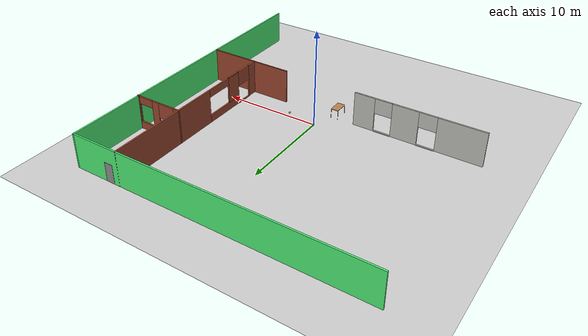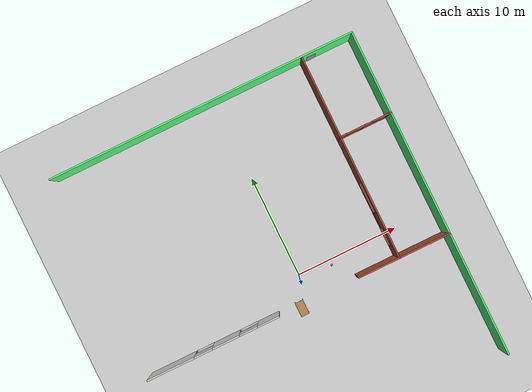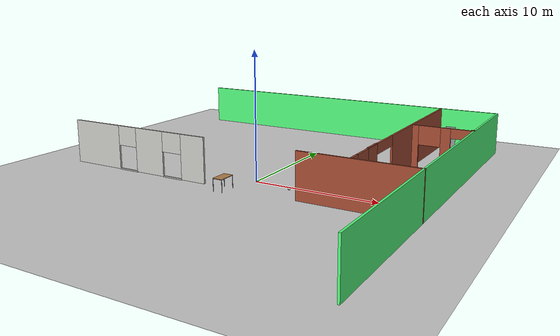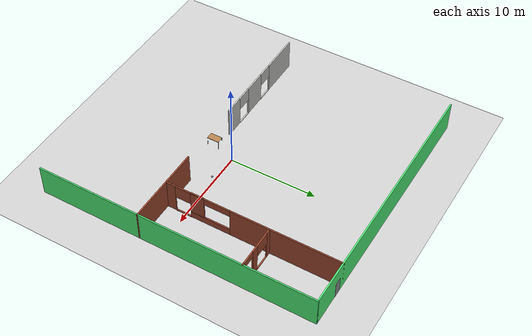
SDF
<sdf version="1.6">
 <world name="default">
  <model name="ground_plane">
   <static>1</static>
   <link name="link">
    <collision name="collision">
     <geometry><plane><normal>0 0 1</normal><size>100 100</size></plane></geometry>
     <surface><friction><ode><mu>100</mu><mu2>50</mu2></ode></friction></surface>
    </collision>
    <visual name="visual">
     <cast_shadows>0</cast_shadows>
     <geometry><plane><normal>0 0 1</normal><size>100 100</size></plane></geometry>
     <material>
      <script><uri>file://media/materials/scripts/gazebo.material</uri><name>Gazebo/Grey</name></script>
     </material>
    </visual>
   </link>
  </model>
  <model name="table_3_clone_clone_clone_0">
   <static>0</static>
   <link name="link">
    <collision name="surface">
     <pose>0 0 1 0 -0 0</pose>
     <geometry><box><size>1.5 0.8 0.03</size></box></geometry>
     <surface><friction><ode><mu>0.6</mu><mu2>0.6</mu2></ode></friction></surface>
    </collision>
    <visual name="visual1">
     <pose>0 0 1 0 -0 0</pose>
     <geometry><box><size>1.4 0.8 0.04</size></box></geometry>
     <material>
      <script><uri>file://media/materials/scripts/gazebo.material</uri><name>Gazebo/Wood</name></script>
     </material>
    </visual>
    <collision name="front_left_leg">
     <pose>0.68 0.38 0.5 0 -0 0</pose>
     <geometry><cylinder><radius>0.02</radius><length>1</length></cylinder></geometry>
    </collision>
    <visual name="front_left_leg">
     <pose>0.68 0.38 0.5 0 -0 0</pose>
     <geometry><cylinder><radius>0.02</radius><length>1</length></cylinder></geometry>
     <material>
      <script><uri>file://media/materials/scripts/gazebo.material</uri><name>Gazebo/Grey</name></script>
     </material>
    </visual>
    <collision name="front_right_leg">
     <pose>0.68 -0.38 0.5 0 -0 0</pose>
     <geometry><cylinder><radius>0.02</radius><length>1</length></cylinder></geometry>
    </collision>
    <visual name="front_right_leg">
     <pose>0.68 -0.38 0.5 0 -0 0</pose>
     <geometry><cylinder><radius>0.02</radius><length>1</length></cylinder></geometry>
     <material>
      <script><uri>file://media/materials/scripts/gazebo.material</uri><name>Gazebo/Grey</name></script>
     </material>
    </visual>
    <collision name="back_right_leg">
     <pose>-0.68 -0.38 0.5 0 -0 0</pose>
     <geometry><cylinder><radius>0.02</radius><length>1</length></cylinder></geometry>
    </collision>
    <visual name="back_right_leg">
     <pose>-0.68 -0.38 0.5 0 -0 0</pose>
     <geometry><cylinder><radius>0.02</radius><length>1</length></cylinder></geometry>
     <material>
      <script><uri>file://media/materials/scripts/gazebo.material</uri><name>Gazebo/Grey</name></script>
     </material>
    </visual>
    <collision name="back_left_leg">
     <pose>-0.68 0.38 0.5 0 -0 0</pose>
     <geometry><cylinder><radius>0.02</radius><length>1</length></cylinder></geometry>
    </collision>
    <visual name="back_left_leg">
     <pose>-0.68 0.38 0.5 0 -0 0</pose>
     <geometry><cylinder><radius>0.02</radius><length>1</length></cylinder></geometry>
     <material>
      <script><uri>file://media/materials/scripts/gazebo.material</uri><name>Gazebo/Grey</name></script>
     </material>
    </visual>
    <inertial>
     <inertia><ixx>1</ixx><ixy>0</ixy><ixz>0</ixz><iyy>1</iyy><iyz>0</iyz><izz>1</izz></inertia>
     <mass>1</mass>
    </inertial>
   </link>
   <pose>-1.06808 -2.82716 -0 0 -0 1.57001</pose>
  </model>
  <model name="my_ball">
   <link name="link_0">
    <inertial>
     <mass>1</mass>
     <inertia><ixx>0.1</ixx><ixy>0</ixy><ixz>0</ixz><iyy>0.1</iyy><iyz>0</iyz><izz>0.1</izz></inertia>
    </inertial>
    <visual name="visual">
     <geometry><sphere><radius>0.1</radius></sphere></geometry>
     <material>
      <lighting>1</lighting>
      <script><uri>file://media/materials/scripts/gazebo.material</uri><name>Gazebo/Grey</name></script>
      <ambient>1 1 1 1</ambient>
      <diffuse>1 1 1 1</diffuse>
      <specular>1 1 1 1</specular>
      <emissive>1 1 1 1</emissive>
      <shader type="vertex"><normal_map>__default__</normal_map></shader>
     </material>
    </visual>
    <collision name="collision">
     <geometry><sphere><radius>0.1</radius></sphere></geometry>
     <surface>
      <friction>
       <ode><mu>1</mu><mu2>1</mu2><fdir1>0 0 0</fdir1><slip1>0</slip1><slip2>0</slip2></ode>
       <torsional>
        <coefficient>1</coefficient>
        <patch_radius>0</patch_radius>
        <surface_radius>0</surface_radius>
        <use_patch_radius>1</use_patch_radius>
        <ode><slip>0</slip></ode>
       </torsional>
      </friction>
      <bounce><restitution_coefficient>0</restitution_coefficient><threshold>1e+06</threshold></bounce>
      <contact>
       <collide_without_contact>0</collide_without_contact>
       <collide_without_contact_bitmask>1</collide_without_contact_bitmask>
       <collide_bitmask>1</collide_bitmask>
       <ode>
        <soft_cfm>0</soft_cfm>
        <soft_erp>0.2</soft_erp>
        <kp>1e+13</kp>
        <kd>1</kd>
        <max_vel>0.01</max_vel>
        <min_depth>0</min_depth>
       </ode>
       <bullet>
        <split_impulse>1</split_impulse>
        <split_impulse_penetration_threshold>-0.01</split_impulse_penetration_threshold>
        <soft_cfm>0</soft_cfm>
        <soft_erp>0.2</soft_erp>
        <kp>1e+13</kp>
        <kd>1</kd>
       </bullet>
      </contact>
     </surface>
    </collision>
   </link>
   <static>0</static>
   <pose>3.17286 -0.504878 0.1 0 -0 0</pose>
  </model>
  <model name="myfloorplan">
   <link name="Door_22">
    <pose>11 16 0 0 -0 0</pose>
    <visual name="Door_22_Visual">
     <pose>0 0 1 0 -0 0</pose>
     <geometry><box><size>0.9 0.17 2</size></box></geometry>
     <material>
      <script><uri>file://media/materials/scripts/gazebo.material</uri><name>Gazebo/Grey</name></script>
     </material>
    </visual>
    <collision name="Door_22_Collision">
     <pose>0 0 1 0 -0 0</pose>
     <geometry><box><size>0.9 0.17 2</size></box></geometry>
     <surface>
      <friction>
       <ode><mu>1</mu><mu2>1</mu2><fdir1>0 0 0</fdir1><slip1>0</slip1><slip2>0</slip2></ode>
       <torsional>
        <coefficient>1</coefficient>
        <patch_radius>0</patch_radius>
        <surface_radius>0</surface_radius>
        <use_patch_radius>1</use_patch_radius>
        <ode><slip>0</slip></ode>
       </torsional>
      </friction>
      <bounce><restitution_coefficient>0</restitution_coefficient><threshold>1e+06</threshold></bounce>
      <contact>
       <collide_without_contact>0</collide_without_contact>
       <collide_without_contact_bitmask>1</collide_without_contact_bitmask>
       <collide_bitmask>1</collide_bitmask>
       <ode>
        <soft_cfm>0</soft_cfm>
        <soft_erp>0.2</soft_erp>
        <kp>1e+13</kp>
        <kd>1</kd>
        <max_vel>0.01</max_vel>
        <min_depth>0</min_depth>
       </ode>
       <bullet>
        <split_impulse>1</split_impulse>
        <split_impulse_penetration_threshold>-0.01</split_impulse_penetration_threshold>
        <soft_cfm>0</soft_cfm>
        <soft_erp>0.2</soft_erp>
        <kp>1e+13</kp>
        <kd>1</kd>
       </bullet>
      </contact>
     </surface>
    </collision>
   </link>
   <link name="Wall_0">
    <pose>0 16 0 0 -0 0</pose>
    <visual name="Wall_0_Visual">
     <pose>0 0 1.8 0 -0 0</pose>
     <geometry><box><size>30.15 0.15 3.6</size></box></geometry>
     <material>
      <script><uri>file://media/materials/scripts/gazebo.material</uri><name>Gazebo/Grey</name></script>
      <ambient>0.333333 1 0.498039 1</ambient>
     </material>
    </visual>
    <collision name="Wall_0_Collision">
     <pose>0 0 1.8 0 -0 0</pose>
     <geometry><box><size>30.15 0.15 3.6</size></box></geometry>
     <surface>
      <friction>
       <ode><mu>1</mu><mu2>1</mu2><fdir1>0 0 0</fdir1><slip1>0</slip1><slip2>0</slip2></ode>
       <torsional>
        <coefficient>1</coefficient>
        <patch_radius>0</patch_radius>
        <surface_radius>0</surface_radius>
        <use_patch_radius>1</use_patch_radius>
        <ode><slip>0</slip></ode>
       </torsional>
      </friction>
      <bounce><restitution_coefficient>0</restitution_coefficient><threshold>1e+06</threshold></bounce>
      <contact>
       <collide_without_contact>0</collide_without_contact>
       <collide_without_contact_bitmask>1</collide_without_contact_bitmask>
       <collide_bitmask>1</collide_bitmask>
       <ode>
        <soft_cfm>0</soft_cfm>
        <soft_erp>0.2</soft_erp>
        <kp>1e+13</kp>
        <kd>1</kd>
        <max_vel>0.01</max_vel>
        <min_depth>0</min_depth>
       </ode>
       <bullet>
        <split_impulse>1</split_impulse>
        <split_impulse_penetration_threshold>-0.01</split_impulse_penetration_threshold>
        <soft_cfm>0</soft_cfm>
        <soft_erp>0.2</soft_erp>
        <kp>1e+13</kp>
        <kd>1</kd>
       </bullet>
      </contact>
     </surface>
    </collision>
   </link>
   <link name="Wall_17">
    <pose>10.5 -4 0 0 -0 0</pose>
    <visual name="Wall_17_Visual">
     <pose>0 0 1.8 0 -0 0</pose>
     <geometry><box><size>9.15 0.15 3.6</size></box></geometry>
     <material>
      <script><uri>file://media/materials/scripts/gazebo.material</uri><name>Gazebo/Bricks</name></script>
      <ambient>0.333333 0.666667 1 1</ambient>
     </material>
    </visual>
    <collision name="Wall_17_Collision">
     <pose>0 0 1.8 0 -0 0</pose>
     <geometry><box><size>9.15 0.15 3.6</size></box></geometry>
     <surface>
      <friction>
       <ode><mu>1</mu><mu2>1</mu2><fdir1>0 0 0</fdir1><slip1>0</slip1><slip2>0</slip2></ode>
       <torsional>
        <coefficient>1</coefficient>
        <patch_radius>0</patch_radius>
        <surface_radius>0</surface_radius>
        <use_patch_radius>1</use_patch_radius>
        <ode><slip>0</slip></ode>
       </torsional>
      </friction>
      <bounce><restitution_coefficient>0</restitution_coefficient><threshold>1e+06</threshold></bounce>
      <contact>
       <collide_without_contact>0</collide_without_contact>
       <collide_without_contact_bitmask>1</collide_without_contact_bitmask>
       <collide_bitmask>1</collide_bitmask>
       <ode>
        <soft_cfm>0</soft_cfm>
        <soft_erp>0.2</soft_erp>
        <kp>1e+13</kp>
        <kd>1</kd>
        <max_vel>0.01</max_vel>
        <min_depth>0</min_depth>
       </ode>
       <bullet>
        <split_impulse>1</split_impulse>
        <split_impulse_penetration_threshold>-0.01</split_impulse_penetration_threshold>
        <soft_cfm>0</soft_cfm>
        <soft_erp>0.2</soft_erp>
        <kp>1e+13</kp>
        <kd>1</kd>
       </bullet>
      </contact>
     </surface>
    </collision>
   </link>
   <link name="Wall_23">
    <pose>10 6 0 0 0 -1.5708</pose>
    <visual name="Wall_23_Visual_0">
     <pose>-3.7875 0 1.8 0 -0 0</pose>
     <geometry><box><size>12.575 0.15 3.6</size></box></geometry>
     <material>
      <script><uri>file://media/materials/scripts/gazebo.material</uri><name>Gazebo/Bricks</name></script>
      <ambient>0.333333 0.666667 1 1</ambient>
     </material>
    </visual>
    <visual name="Wall_23_Visual_1">
     <pose>9.4875 0 1.8 0 -0 0</pose>
     <geometry><box><size>1.175 0.15 3.6</size></box></geometry>
     <material>
      <script><uri>file://media/materials/scripts/gazebo.material</uri><name>Gazebo/Bricks</name></script>
      <ambient>0.333333 0.666667 1 1</ambient>
     </material>
    </visual>
    <visual name="Wall_23_Visual_2">
     <pose>4.8 0 0.4 0 -0 0</pose>
     <geometry><box><size>4.6 0.15 0.8</size></box></geometry>
     <material>
      <script><uri>file://media/materials/scripts/gazebo.material</uri><name>Gazebo/Bricks</name></script>
      <ambient>0.333333 0.666667 1 1</ambient>
     </material>
    </visual>
    <visual name="Wall_23_Visual_3">
     <pose>8 0 0 0 -0 0</pose>
     <geometry><box><size>1.8 0.15 0.1</size></box></geometry>
     <material>
      <script><uri>file://media/materials/scripts/gazebo.material</uri><name>Gazebo/Bricks</name></script>
      <ambient>0.333333 0.666667 1 1</ambient>
     </material>
    </visual>
    <visual name="Wall_23_Visual_4">
     <pose>6.3 0 2.2 0 -0 0</pose>
     <geometry><box><size>1.6 0.15 2.8</size></box></geometry>
     <material>
      <script><uri>file://media/materials/scripts/gazebo.material</uri><name>Gazebo/Bricks</name></script>
      <ambient>0.333333 0.666667 1 1</ambient>
     </material>
    </visual>
    <visual name="Wall_23_Visual_5">
     <pose>8 0 2.8 0 -0 0</pose>
     <geometry><box><size>1.8 0.15 1.6</size></box></geometry>
     <material>
      <script><uri>file://media/materials/scripts/gazebo.material</uri><name>Gazebo/Bricks</name></script>
      <ambient>0.333333 0.666667 1 1</ambient>
     </material>
    </visual>
    <visual name="Wall_23_Visual_6">
     <pose>4 0 3.2 0 -0 0</pose>
     <geometry><box><size>3 0.15 0.8</size></box></geometry>
     <material>
      <script><uri>file://media/materials/scripts/gazebo.material</uri><name>Gazebo/Bricks</name></script>
      <ambient>0.333333 0.666667 1 1</ambient>
     </material>
    </visual>
    <visual name="Wall_23_Visual_7">
     <pose>6.3 0 3.6 0 -0 0</pose>
     <geometry><box><size>1.6 0.15 0.1</size></box></geometry>
     <material>
      <script><uri>file://media/materials/scripts/gazebo.material</uri><name>Gazebo/Bricks</name></script>
      <ambient>0.333333 0.666667 1 1</ambient>
     </material>
    </visual>
    <collision name="Wall_23_Collision_0">
     <pose>-3.7875 0 1.8 0 -0 0</pose>
     <geometry><box><size>12.575 0.15 3.6</size></box></geometry>
     <surface>
      <friction>
       <ode><mu>1</mu><mu2>1</mu2><fdir1>0 0 0</fdir1><slip1>0</slip1><slip2>0</slip2></ode>
       <torsional>
        <coefficient>1</coefficient>
        <patch_radius>0</patch_radius>
        <surface_radius>0</surface_radius>
        <use_patch_radius>1</use_patch_radius>
        <ode><slip>0</slip></ode>
       </torsional>
      </friction>
      <bounce><restitution_coefficient>0</restitution_coefficient><threshold>1e+06</threshold></bounce>
      <contact>
       <collide_without_contact>0</collide_without_contact>
       <collide_without_contact_bitmask>1</collide_without_contact_bitmask>
       <collide_bitmask>1</collide_bitmask>
       <ode>
        <soft_cfm>0</soft_cfm>
        <soft_erp>0.2</soft_erp>
        <kp>1e+13</kp>
        <kd>1</kd>
        <max_vel>0.01</max_vel>
        <min_depth>0</min_depth>
       </ode>
       <bullet>
        <split_impulse>1</split_impulse>
        <split_impulse_penetration_threshold>-0.01</split_impulse_penetration_threshold>
        <soft_cfm>0</soft_cfm>
        <soft_erp>0.2</soft_erp>
        <kp>1e+13</kp>
        <kd>1</kd>
       </bullet>
      </contact>
     </surface>
    </collision>
    <collision name="Wall_23_Collision_1">
     <pose>9.4875 0 1.8 0 -0 0</pose>
     <geometry><box><size>1.175 0.15 3.6</size></box></geometry>
     <surface>
      <friction>
       <ode><mu>1</mu><mu2>1</mu2><fdir1>0 0 0</fdir1><slip1>0</slip1><slip2>0</slip2></ode>
       <torsional>
        <coefficient>1</coefficient>
        <patch_radius>0</patch_radius>
        <surface_radius>0</surface_radius>
        <use_patch_radius>1</use_patch_radius>
        <ode><slip>0</slip></ode>
       </torsional>
      </friction>
      <bounce><restitution_coefficient>0</restitution_coefficient><threshold>1e+06</threshold></bounce>
      <contact>
       <collide_without_contact>0</collide_without_contact>
       <collide_without_contact_bitmask>1</collide_without_contact_bitmask>
       <collide_bitmask>1</collide_bitmask>
       <ode>
        <soft_cfm>0</soft_cfm>
        <soft_erp>0.2</soft_erp>
        <kp>1e+13</kp>
        <kd>1</kd>
        <max_vel>0.01</max_vel>
        <min_depth>0</min_depth>
       </ode>
       <bullet>
        <split_impulse>1</split_impulse>
        <split_impulse_penetration_threshold>-0.01</split_impulse_penetration_threshold>
        <soft_cfm>0</soft_cfm>
        <soft_erp>0.2</soft_erp>
        <kp>1e+13</kp>
        <kd>1</kd>
       </bullet>
      </contact>
     </surface>
    </collision>
    <collision name="Wall_23_Collision_2">
     <pose>4.8 0 0.4 0 -0 0</pose>
     <geometry><box><size>4.6 0.15 0.8</size></box></geometry>
     <surface>
      <friction>
       <ode><mu>1</mu><mu2>1</mu2><fdir1>0 0 0</fdir1><slip1>0</slip1><slip2>0</slip2></ode>
       <torsional>
        <coefficient>1</coefficient>
        <patch_radius>0</patch_radius>
        <surface_radius>0</surface_radius>
        <use_patch_radius>1</use_patch_radius>
        <ode><slip>0</slip></ode>
       </torsional>
      </friction>
      <bounce><restitution_coefficient>0</restitution_coefficient><threshold>1e+06</threshold></bounce>
      <contact>
       <collide_without_contact>0</collide_without_contact>
       <collide_without_contact_bitmask>1</collide_without_contact_bitmask>
       <collide_bitmask>1</collide_bitmask>
       <ode>
        <soft_cfm>0</soft_cfm>
        <soft_erp>0.2</soft_erp>
        <kp>1e+13</kp>
        <kd>1</kd>
        <max_vel>0.01</max_vel>
        <min_depth>0</min_depth>
       </ode>
       <bullet>
        <split_impulse>1</split_impulse>
        <split_impulse_penetration_threshold>-0.01</split_impulse_penetration_threshold>
        <soft_cfm>0</soft_cfm>
        <soft_erp>0.2</soft_erp>
        <kp>1e+13</kp>
        <kd>1</kd>
       </bullet>
      </contact>
     </surface>
    </collision>
    <collision name="Wall_23_Collision_3">
     <pose>8 0 0 0 -0 0</pose>
     <geometry><box><size>1.8 0.15 0.1</size></box></geometry>
     <surface>
      <friction>
       <ode><mu>1</mu><mu2>1</mu2><fdir1>0 0 0</fdir1><slip1>0</slip1><slip2>0</slip2></ode>
       <torsional>
        <coefficient>1</coefficient>
        <patch_radius>0</patch_radius>
        <surface_radius>0</surface_radius>
        <use_patch_radius>1</use_patch_radius>
        <ode><slip>0</slip></ode>
       </torsional>
      </friction>
      <bounce><restitution_coefficient>0</restitution_coefficient><threshold>1e+06</threshold></bounce>
      <contact>
       <collide_without_contact>0</collide_without_contact>
       <collide_without_contact_bitmask>1</collide_without_contact_bitmask>
       <collide_bitmask>1</collide_bitmask>
       <ode>
        <soft_cfm>0</soft_cfm>
        <soft_erp>0.2</soft_erp>
        <kp>1e+13</kp>
        <kd>1</kd>
        <max_vel>0.01</max_vel>
        <min_depth>0</min_depth>
       </ode>
       <bullet>
        <split_impulse>1</split_impulse>
        <split_impulse_penetration_threshold>-0.01</split_impulse_penetration_threshold>
        <soft_cfm>0</soft_cfm>
        <soft_erp>0.2</soft_erp>
        <kp>1e+13</kp>
        <kd>1</kd>
       </bullet>
      </contact>
     </surface>
    </collision>
    <collision name="Wall_23_Collision_4">
     <pose>6.3 0 2.2 0 -0 0</pose>
     <geometry><box><size>1.6 0.15 2.8</size></box></geometry>
     <surface>
      <friction>
       <ode><mu>1</mu><mu2>1</mu2><fdir1>0 0 0</fdir1><slip1>0</slip1><slip2>0</slip2></ode>
       <torsional>
        <coefficient>1</coefficient>
        <patch_radius>0</patch_radius>
        <surface_radius>0</surface_radius>
        <use_patch_radius>1</use_patch_radius>
        <ode><slip>0</slip></ode>
       </torsional>
      </friction>
      <bounce><restitution_coefficient>0</restitution_coefficient><threshold>1e+06</threshold></bounce>
      <contact>
       <collide_without_contact>0</collide_without_contact>
       <collide_without_contact_bitmask>1</collide_without_contact_bitmask>
       <collide_bitmask>1</collide_bitmask>
       <ode>
        <soft_cfm>0</soft_cfm>
        <soft_erp>0.2</soft_erp>
        <kp>1e+13</kp>
        <kd>1</kd>
        <max_vel>0.01</max_vel>
        <min_depth>0</min_depth>
       </ode>
       <bullet>
        <split_impulse>1</split_impulse>
        <split_impulse_penetration_threshold>-0.01</split_impulse_penetration_threshold>
        <soft_cfm>0</soft_cfm>
        <soft_erp>0.2</soft_erp>
        <kp>1e+13</kp>
        <kd>1</kd>
       </bullet>
      </contact>
     </surface>
    </collision>
    <collision name="Wall_23_Collision_5">
     <pose>8 0 2.8 0 -0 0</pose>
     <geometry><box><size>1.8 0.15 1.6</size></box></geometry>
     <surface>
      <friction>
       <ode><mu>1</mu><mu2>1</mu2><fdir1>0 0 0</fdir1><slip1>0</slip1><slip2>0</slip2></ode>
       <torsional>
        <coefficient>1</coefficient>
        <patch_radius>0</patch_radius>
        <surface_radius>0</surface_radius>
        <use_patch_radius>1</use_patch_radius>
        <ode><slip>0</slip></ode>
       </torsional>
      </friction>
      <bounce><restitution_coefficient>0</restitution_coefficient><threshold>1e+06</threshold></bounce>
      <contact>
       <collide_without_contact>0</collide_without_contact>
       <collide_without_contact_bitmask>1</collide_without_contact_bitmask>
       <collide_bitmask>1</collide_bitmask>
       <ode>
        <soft_cfm>0</soft_cfm>
        <soft_erp>0.2</soft_erp>
        <kp>1e+13</kp>
        <kd>1</kd>
        <max_vel>0.01</max_vel>
        <min_depth>0</min_depth>
       </ode>
       <bullet>
        <split_impulse>1</split_impulse>
        <split_impulse_penetration_threshold>-0.01</split_impulse_penetration_threshold>
        <soft_cfm>0</soft_cfm>
        <soft_erp>0.2</soft_erp>
        <kp>1e+13</kp>
        <kd>1</kd>
       </bullet>
      </contact>
     </surface>
    </collision>
    <collision name="Wall_23_Collision_6">
     <pose>4 0 3.2 0 -0 0</pose>
     <geometry><box><size>3 0.15 0.8</size></box></geometry>
     <surface>
      <friction>
       <ode><mu>1</mu><mu2>1</mu2><fdir1>0 0 0</fdir1><slip1>0</slip1><slip2>0</slip2></ode>
       <torsional>
        <coefficient>1</coefficient>
        <patch_radius>0</patch_radius>
        <surface_radius>0</surface_radius>
        <use_patch_radius>1</use_patch_radius>
        <ode><slip>0</slip></ode>
       </torsional>
      </friction>
      <bounce><restitution_coefficient>0</restitution_coefficient><threshold>1e+06</threshold></bounce>
      <contact>
       <collide_without_contact>0</collide_without_contact>
       <collide_without_contact_bitmask>1</collide_without_contact_bitmask>
       <collide_bitmask>1</collide_bitmask>
       <ode>
        <soft_cfm>0</soft_cfm>
        <soft_erp>0.2</soft_erp>
        <kp>1e+13</kp>
        <kd>1</kd>
        <max_vel>0.01</max_vel>
        <min_depth>0</min_depth>
       </ode>
       <bullet>
        <split_impulse>1</split_impulse>
        <split_impulse_penetration_threshold>-0.01</split_impulse_penetration_threshold>
        <soft_cfm>0</soft_cfm>
        <soft_erp>0.2</soft_erp>
        <kp>1e+13</kp>
        <kd>1</kd>
       </bullet>
      </contact>
     </surface>
    </collision>
    <collision name="Wall_23_Collision_7">
     <pose>6.3 0 3.6 0 -0 0</pose>
     <geometry><box><size>1.6 0.15 0.1</size></box></geometry>
     <surface>
      <friction>
       <ode><mu>1</mu><mu2>1</mu2><fdir1>0 0 0</fdir1><slip1>0</slip1><slip2>0</slip2></ode>
       <torsional>
        <coefficient>1</coefficient>
        <patch_radius>0</patch_radius>
        <surface_radius>0</surface_radius>
        <use_patch_radius>1</use_patch_radius>
        <ode><slip>0</slip></ode>
       </torsional>
      </friction>
      <bounce><restitution_coefficient>0</restitution_coefficient><threshold>1e+06</threshold></bounce>
      <contact>
       <collide_without_contact>0</collide_without_contact>
       <collide_without_contact_bitmask>1</collide_without_contact_bitmask>
       <collide_bitmask>1</collide_bitmask>
       <ode>
        <soft_cfm>0</soft_cfm>
        <soft_erp>0.2</soft_erp>
        <kp>1e+13</kp>
        <kd>1</kd>
        <max_vel>0.01</max_vel>
        <min_depth>0</min_depth>
       </ode>
       <bullet>
        <split_impulse>1</split_impulse>
        <split_impulse_penetration_threshold>-0.01</split_impulse_penetration_threshold>
        <soft_cfm>0</soft_cfm>
        <soft_erp>0.2</soft_erp>
        <kp>1e+13</kp>
        <kd>1</kd>
       </bullet>
      </contact>
     </surface>
    </collision>
   </link>
   <link name="Wall_44">
    <pose>-8.5 -4 0 0 -0 0</pose>
    <visual name="Wall_44_Visual_0">
     <pose>-4.2375 0 1.8 0 -0 0</pose>
     <geometry><box><size>4.675 0.15 3.6</size></box></geometry>
     <material>
      <script><uri>file://media/materials/scripts/gazebo.material</uri><name>Gazebo/CeilingTiled</name></script>
      <ambient>1 1 0.498039 1</ambient>
     </material>
    </visual>
    <visual name="Wall_44_Visual_1">
     <pose>1.25 0 1.8 0 -0 0</pose>
     <geometry><box><size>2.7 0.15 3.6</size></box></geometry>
     <material>
      <script><uri>file://media/materials/scripts/gazebo.material</uri><name>Gazebo/CeilingTiled</name></script>
      <ambient>1 1 0.498039 1</ambient>
     </material>
    </visual>
    <visual name="Wall_44_Visual_2">
     <pose>5.4875 0 1.8 0 -0 0</pose>
     <geometry><box><size>2.175 0.15 3.6</size></box></geometry>
     <material>
      <script><uri>file://media/materials/scripts/gazebo.material</uri><name>Gazebo/CeilingTiled</name></script>
      <ambient>1 1 0.498039 1</ambient>
     </material>
    </visual>
    <visual name="Wall_44_Visual_3">
     <pose>-1 0 0 0 -0 0</pose>
     <geometry><box><size>1.8 0.15 0.1</size></box></geometry>
     <material>
      <script><uri>file://media/materials/scripts/gazebo.material</uri><name>Gazebo/CeilingTiled</name></script>
      <ambient>1 1 0.498039 1</ambient>
     </material>
    </visual>
    <visual name="Wall_44_Visual_4">
     <pose>3.5 0 0 0 -0 0</pose>
     <geometry><box><size>1.8 0.15 0.1</size></box></geometry>
     <material>
      <script><uri>file://media/materials/scripts/gazebo.material</uri><name>Gazebo/CeilingTiled</name></script>
      <ambient>1 1 0.498039 1</ambient>
     </material>
    </visual>
    <visual name="Wall_44_Visual_5">
     <pose>-1 0 2.8 0 -0 0</pose>
     <geometry><box><size>1.8 0.15 1.6</size></box></geometry>
     <material>
      <script><uri>file://media/materials/scripts/gazebo.material</uri><name>Gazebo/CeilingTiled</name></script>
      <ambient>1 1 0.498039 1</ambient>
     </material>
    </visual>
    <visual name="Wall_44_Visual_6">
     <pose>3.5 0 2.8 0 -0 0</pose>
     <geometry><box><size>1.8 0.15 1.6</size></box></geometry>
     <material>
      <script><uri>file://media/materials/scripts/gazebo.material</uri><name>Gazebo/CeilingTiled</name></script>
      <ambient>1 1 0.498039 1</ambient>
     </material>
    </visual>
    <collision name="Wall_44_Collision_0">
     <pose>-4.2375 0 1.8 0 -0 0</pose>
     <geometry><box><size>4.675 0.15 3.6</size></box></geometry>
     <surface>
      <friction>
       <ode><mu>1</mu><mu2>1</mu2><fdir1>0 0 0</fdir1><slip1>0</slip1><slip2>0</slip2></ode>
       <torsional>
        <coefficient>1</coefficient>
        <patch_radius>0</patch_radius>
        <surface_radius>0</surface_radius>
        <use_patch_radius>1</use_patch_radius>
        <ode><slip>0</slip></ode>
       </torsional>
      </friction>
      <bounce><restitution_coefficient>0</restitution_coefficient><threshold>1e+06</threshold></bounce>
      <contact>
       <collide_without_contact>0</collide_without_contact>
       <collide_without_contact_bitmask>1</collide_without_contact_bitmask>
       <collide_bitmask>1</collide_bitmask>
       <ode>
        <soft_cfm>0</soft_cfm>
        <soft_erp>0.2</soft_erp>
        <kp>1e+13</kp>
        <kd>1</kd>
        <max_vel>0.01</max_vel>
        <min_depth>0</min_depth>
       </ode>
       <bullet>
        <split_impulse>1</split_impulse>
        <split_impulse_penetration_threshold>-0.01</split_impulse_penetration_threshold>
        <soft_cfm>0</soft_cfm>
        <soft_erp>0.2</soft_erp>
        <kp>1e+13</kp>
        <kd>1</kd>
       </bullet>
      </contact>
     </surface>
    </collision>
    <collision name="Wall_44_Collision_1">
     <pose>1.25 0 1.8 0 -0 0</pose>
     <geometry><box><size>2.7 0.15 3.6</size></box></geometry>
     <surface>
      <friction>
       <ode><mu>1</mu><mu2>1</mu2><fdir1>0 0 0</fdir1><slip1>0</slip1><slip2>0</slip2></ode>
       <torsional>
        <coefficient>1</coefficient>
        <patch_radius>0</patch_radius>
        <surface_radius>0</surface_radius>
        <use_patch_radius>1</use_patch_radius>
        <ode><slip>0</slip></ode>
       </torsional>
      </friction>
      <bounce><restitution_coefficient>0</restitution_coefficient><threshold>1e+06</threshold></bounce>
      <contact>
       <collide_without_contact>0</collide_without_contact>
       <collide_without_contact_bitmask>1</collide_without_contact_bitmask>
       <collide_bitmask>1</collide_bitmask>
       <ode>
        <soft_cfm>0</soft_cfm>
        <soft_erp>0.2</soft_erp>
        <kp>1e+13</kp>
        <kd>1</kd>
        <max_vel>0.01</max_vel>
        <min_depth>0</min_depth>
       </ode>
       <bullet>
        <split_impulse>1</split_impulse>
        <split_impulse_penetration_threshold>-0.01</split_impulse_penetration_threshold>
        <soft_cfm>0</soft_cfm>
        <soft_erp>0.2</soft_erp>
        <kp>1e+13</kp>
        <kd>1</kd>
       </bullet>
      </contact>
     </surface>
    </collision>
    <collision name="Wall_44_Collision_2">
     <pose>5.4875 0 1.8 0 -0 0</pose>
     <geometry><box><size>2.175 0.15 3.6</size></box></geometry>
     <surface>
      <friction>
       <ode><mu>1</mu><mu2>1</mu2><fdir1>0 0 0</fdir1><slip1>0</slip1><slip2>0</slip2></ode>
       <torsional>
        <coefficient>1</coefficient>
        <patch_radius>0</patch_radius>
        <surface_radius>0</surface_radius>
        <use_patch_radius>1</use_patch_radius>
        <ode><slip>0</slip></ode>
       </torsional>
      </friction>
      <bounce><restitution_coefficient>0</restitution_coefficient><threshold>1e+06</threshold></bounce>
      <contact>
       <collide_without_contact>0</collide_without_contact>
       <collide_without_contact_bitmask>1</collide_without_contact_bitmask>
       <collide_bitmask>1</collide_bitmask>
       <ode>
        <soft_cfm>0</soft_cfm>
        <soft_erp>0.2</soft_erp>
        <kp>1e+13</kp>
        <kd>1</kd>
        <max_vel>0.01</max_vel>
        <min_depth>0</min_depth>
       </ode>
       <bullet>
        <split_impulse>1</split_impulse>
        <split_impulse_penetration_threshold>-0.01</split_impulse_penetration_threshold>
        <soft_cfm>0</soft_cfm>
        <soft_erp>0.2</soft_erp>
        <kp>1e+13</kp>
        <kd>1</kd>
       </bullet>
      </contact>
     </surface>
    </collision>
    <collision name="Wall_44_Collision_3">
     <pose>-1 0 0 0 -0 0</pose>
     <geometry><box><size>1.8 0.15 0.1</size></box></geometry>
     <surface>
      <friction>
       <ode><mu>1</mu><mu2>1</mu2><fdir1>0 0 0</fdir1><slip1>0</slip1><slip2>0</slip2></ode>
       <torsional>
        <coefficient>1</coefficient>
        <patch_radius>0</patch_radius>
        <surface_radius>0</surface_radius>
        <use_patch_radius>1</use_patch_radius>
        <ode><slip>0</slip></ode>
       </torsional>
      </friction>
      <bounce><restitution_coefficient>0</restitution_coefficient><threshold>1e+06</threshold></bounce>
      <contact>
       <collide_without_contact>0</collide_without_contact>
       <collide_without_contact_bitmask>1</collide_without_contact_bitmask>
       <collide_bitmask>1</collide_bitmask>
       <ode>
        <soft_cfm>0</soft_cfm>
        <soft_erp>0.2</soft_erp>
        <kp>1e+13</kp>
        <kd>1</kd>
        <max_vel>0.01</max_vel>
        <min_depth>0</min_depth>
       </ode>
       <bullet>
        <split_impulse>1</split_impulse>
        <split_impulse_penetration_threshold>-0.01</split_impulse_penetration_threshold>
        <soft_cfm>0</soft_cfm>
        <soft_erp>0.2</soft_erp>
        <kp>1e+13</kp>
        <kd>1</kd>
       </bullet>
      </contact>
     </surface>
    </collision>
    <collision name="Wall_44_Collision_4">
     <pose>3.5 0 0 0 -0 0</pose>
     <geometry><box><size>1.8 0.15 0.1</size></box></geometry>
     <surface>
      <friction>
       <ode><mu>1</mu><mu2>1</mu2><fdir1>0 0 0</fdir1><slip1>0</slip1><slip2>0</slip2></ode>
       <torsional>
        <coefficient>1</coefficient>
        <patch_radius>0</patch_radius>
        <surface_radius>0</surface_radius>
        <use_patch_radius>1</use_patch_radius>
        <ode><slip>0</slip></ode>
       </torsional>
      </friction>
      <bounce><restitution_coefficient>0</restitution_coefficient><threshold>1e+06</threshold></bounce>
      <contact>
       <collide_without_contact>0</collide_without_contact>
       <collide_without_contact_bitmask>1</collide_without_contact_bitmask>
       <collide_bitmask>1</collide_bitmask>
       <ode>
        <soft_cfm>0</soft_cfm>
        <soft_erp>0.2</soft_erp>
        <kp>1e+13</kp>
        <kd>1</kd>
        <max_vel>0.01</max_vel>
        <min_depth>0</min_depth>
       </ode>
       <bullet>
        <split_impulse>1</split_impulse>
        <split_impulse_penetration_threshold>-0.01</split_impulse_penetration_threshold>
        <soft_cfm>0</soft_cfm>
        <soft_erp>0.2</soft_erp>
        <kp>1e+13</kp>
        <kd>1</kd>
       </bullet>
      </contact>
     </surface>
    </collision>
    <collision name="Wall_44_Collision_5">
     <pose>-1 0 2.8 0 -0 0</pose>
     <geometry><box><size>1.8 0.15 1.6</size></box></geometry>
     <surface>
      <friction>
       <ode><mu>1</mu><mu2>1</mu2><fdir1>0 0 0</fdir1><slip1>0</slip1><slip2>0</slip2></ode>
       <torsional>
        <coefficient>1</coefficient>
        <patch_radius>0</patch_radius>
        <surface_radius>0</surface_radius>
        <use_patch_radius>1</use_patch_radius>
        <ode><slip>0</slip></ode>
       </torsional>
      </friction>
      <bounce><restitution_coefficient>0</restitution_coefficient><threshold>1e+06</threshold></bounce>
      <contact>
       <collide_without_contact>0</collide_without_contact>
       <collide_without_contact_bitmask>1</collide_without_contact_bitmask>
       <collide_bitmask>1</collide_bitmask>
       <ode>
        <soft_cfm>0</soft_cfm>
        <soft_erp>0.2</soft_erp>
        <kp>1e+13</kp>
        <kd>1</kd>
        <max_vel>0.01</max_vel>
        <min_depth>0</min_depth>
       </ode>
       <bullet>
        <split_impulse>1</split_impulse>
        <split_impulse_penetration_threshold>-0.01</split_impulse_penetration_threshold>
        <soft_cfm>0</soft_cfm>
        <soft_erp>0.2</soft_erp>
        <kp>1e+13</kp>
        <kd>1</kd>
       </bullet>
      </contact>
     </surface>
    </collision>
    <collision name="Wall_44_Collision_6">
     <pose>3.5 0 2.8 0 -0 0</pose>
     <geometry><box><size>1.8 0.15 1.6</size></box></geometry>
     <surface>
      <friction>
       <ode><mu>1</mu><mu2>1</mu2><fdir1>0 0 0</fdir1><slip1>0</slip1><slip2>0</slip2></ode>
       <torsional>
        <coefficient>1</coefficient>
        <patch_radius>0</patch_radius>
        <surface_radius>0</surface_radius>
        <use_patch_radius>1</use_patch_radius>
        <ode><slip>0</slip></ode>
       </torsional>
      </friction>
      <bounce><restitution_coefficient>0</restitution_coefficient><threshold>1e+06</threshold></bounce>
      <contact>
       <collide_without_contact>0</collide_without_contact>
       <collide_without_contact_bitmask>1</collide_without_contact_bitmask>
       <collide_bitmask>1</collide_bitmask>
       <ode>
        <soft_cfm>0</soft_cfm>
        <soft_erp>0.2</soft_erp>
        <kp>1e+13</kp>
        <kd>1</kd>
        <max_vel>0.01</max_vel>
        <min_depth>0</min_depth>
       </ode>
       <bullet>
        <split_impulse>1</split_impulse>
        <split_impulse_penetration_threshold>-0.01</split_impulse_penetration_threshold>
        <soft_cfm>0</soft_cfm>
        <soft_erp>0.2</soft_erp>
        <kp>1e+13</kp>
        <kd>1</kd>
       </bullet>
      </contact>
     </surface>
    </collision>
   </link>
   <link name="Wall_48">
    <pose>12.5 8 0 0 -0 0</pose>
    <visual name="Wall_48_Visual_0">
     <pose>-2.2375 0 1.8 0 -0 0</pose>
     <geometry><box><size>0.675 0.15 3.6</size></box></geometry>
     <material>
      <script><uri>file://media/materials/scripts/gazebo.material</uri><name>Gazebo/Bricks</name></script>
      <ambient>0.333333 0.666667 1 1</ambient>
     </material>
    </visual>
    <visual name="Wall_48_Visual_1">
     <pose>0.3 0 1.8 0 -0 0</pose>
     <geometry><box><size>0.8 0.15 3.6</size></box></geometry>
     <material>
      <script><uri>file://media/materials/scripts/gazebo.material</uri><name>Gazebo/Bricks</name></script>
      <ambient>0.333333 0.666667 1 1</ambient>
     </material>
    </visual>
    <visual name="Wall_48_Visual_2">
     <pose>-1 0 0 0 -0 0</pose>
     <geometry><box><size>1.8 0.15 0.1</size></box></geometry>
     <material>
      <script><uri>file://media/materials/scripts/gazebo.material</uri><name>Gazebo/Bricks</name></script>
      <ambient>0.333333 0.666667 1 1</ambient>
     </material>
    </visual>
    <visual name="Wall_48_Visual_3">
     <pose>1.6375 0 0.4 0 -0 0</pose>
     <geometry><box><size>1.875 0.15 0.8</size></box></geometry>
     <material>
      <script><uri>file://media/materials/scripts/gazebo.material</uri><name>Gazebo/Bricks</name></script>
      <ambient>0.333333 0.666667 1 1</ambient>
     </material>
    </visual>
    <visual name="Wall_48_Visual_4">
     <pose>2.4375 0 2.2 0 -0 0</pose>
     <geometry><box><size>0.275 0.15 2.8</size></box></geometry>
     <material>
      <script><uri>file://media/materials/scripts/gazebo.material</uri><name>Gazebo/Bricks</name></script>
      <ambient>0.333333 0.666667 1 1</ambient>
     </material>
    </visual>
    <visual name="Wall_48_Visual_5">
     <pose>-1 0 2.8 0 -0 0</pose>
     <geometry><box><size>1.8 0.15 1.6</size></box></geometry>
     <material>
      <script><uri>file://media/materials/scripts/gazebo.material</uri><name>Gazebo/Bricks</name></script>
      <ambient>0.333333 0.666667 1 1</ambient>
     </material>
    </visual>
    <visual name="Wall_48_Visual_6">
     <pose>1.5 0 3.2 0 -0 0</pose>
     <geometry><box><size>1.6 0.15 0.8</size></box></geometry>
     <material>
      <script><uri>file://media/materials/scripts/gazebo.material</uri><name>Gazebo/Bricks</name></script>
      <ambient>0.333333 0.666667 1 1</ambient>
     </material>
    </visual>
    <visual name="Wall_48_Visual_7">
     <pose>2.4375 0 3.6 0 -0 0</pose>
     <geometry><box><size>0.275 0.15 0.1</size></box></geometry>
     <material>
      <script><uri>file://media/materials/scripts/gazebo.material</uri><name>Gazebo/Bricks</name></script>
      <ambient>0.333333 0.666667 1 1</ambient>
     </material>
    </visual>
    <collision name="Wall_48_Collision_0">
     <pose>-2.2375 0 1.8 0 -0 0</pose>
     <geometry><box><size>0.675 0.15 3.6</size></box></geometry>
     <surface>
      <friction>
       <ode><mu>1</mu><mu2>1</mu2><fdir1>0 0 0</fdir1><slip1>0</slip1><slip2>0</slip2></ode>
       <torsional>
        <coefficient>1</coefficient>
        <patch_radius>0</patch_radius>
        <surface_radius>0</surface_radius>
        <use_patch_radius>1</use_patch_radius>
        <ode><slip>0</slip></ode>
       </torsional>
      </friction>
      <bounce><restitution_coefficient>0</restitution_coefficient><threshold>1e+06</threshold></bounce>
      <contact>
       <collide_without_contact>0</collide_without_contact>
       <collide_without_contact_bitmask>1</collide_without_contact_bitmask>
       <collide_bitmask>1</collide_bitmask>
       <ode>
        <soft_cfm>0</soft_cfm>
        <soft_erp>0.2</soft_erp>
        <kp>1e+13</kp>
        <kd>1</kd>
        <max_vel>0.01</max_vel>
        <min_depth>0</min_depth>
       </ode>
       <bullet>
        <split_impulse>1</split_impulse>
        <split_impulse_penetration_threshold>-0.01</split_impulse_penetration_threshold>
        <soft_cfm>0</soft_cfm>
        <soft_erp>0.2</soft_erp>
        <kp>1e+13</kp>
        <kd>1</kd>
       </bullet>
      </contact>
     </surface>
    </collision>
    <collision name="Wall_48_Collision_1">
     <pose>0.3 0 1.8 0 -0 0</pose>
     <geometry><box><size>0.8 0.15 3.6</size></box></geometry>
     <surface>
      <friction>
       <ode><mu>1</mu><mu2>1</mu2><fdir1>0 0 0</fdir1><slip1>0</slip1><slip2>0</slip2></ode>
       <torsional>
        <coefficient>1</coefficient>
        <patch_radius>0</patch_radius>
        <surface_radius>0</surface_radius>
        <use_patch_radius>1</use_patch_radius>
        <ode><slip>0</slip></ode>
       </torsional>
      </friction>
      <bounce><restitution_coefficient>0</restitution_coefficient><threshold>1e+06</threshold></bounce>
      <contact>
       <collide_without_contact>0</collide_without_contact>
       <collide_without_contact_bitmask>1</collide_without_contact_bitmask>
       <collide_bitmask>1</collide_bitmask>
       <ode>
        <soft_cfm>0</soft_cfm>
        <soft_erp>0.2</soft_erp>
        <kp>1e+13</kp>
        <kd>1</kd>
        <max_vel>0.01</max_vel>
        <min_depth>0</min_depth>
       </ode>
       <bullet>
        <split_impulse>1</split_impulse>
        <split_impulse_penetration_threshold>-0.01</split_impulse_penetration_threshold>
        <soft_cfm>0</soft_cfm>
        <soft_erp>0.2</soft_erp>
        <kp>1e+13</kp>
        <kd>1</kd>
       </bullet>
      </contact>
     </surface>
    </collision>
    <collision name="Wall_48_Collision_2">
     <pose>-1 0 0 0 -0 0</pose>
     <geometry><box><size>1.8 0.15 0.1</size></box></geometry>
     <surface>
      <friction>
       <ode><mu>1</mu><mu2>1</mu2><fdir1>0 0 0</fdir1><slip1>0</slip1><slip2>0</slip2></ode>
       <torsional>
        <coefficient>1</coefficient>
        <patch_radius>0</patch_radius>
        <surface_radius>0</surface_radius>
        <use_patch_radius>1</use_patch_radius>
        <ode><slip>0</slip></ode>
       </torsional>
      </friction>
      <bounce><restitution_coefficient>0</restitution_coefficient><threshold>1e+06</threshold></bounce>
      <contact>
       <collide_without_contact>0</collide_without_contact>
       <collide_without_contact_bitmask>1</collide_without_contact_bitmask>
       <collide_bitmask>1</collide_bitmask>
       <ode>
        <soft_cfm>0</soft_cfm>
        <soft_erp>0.2</soft_erp>
        <kp>1e+13</kp>
        <kd>1</kd>
        <max_vel>0.01</max_vel>
        <min_depth>0</min_depth>
       </ode>
       <bullet>
        <split_impulse>1</split_impulse>
        <split_impulse_penetration_threshold>-0.01</split_impulse_penetration_threshold>
        <soft_cfm>0</soft_cfm>
        <soft_erp>0.2</soft_erp>
        <kp>1e+13</kp>
        <kd>1</kd>
       </bullet>
      </contact>
     </surface>
    </collision>
    <collision name="Wall_48_Collision_3">
     <pose>1.6375 0 0.4 0 -0 0</pose>
     <geometry><box><size>1.875 0.15 0.8</size></box></geometry>
     <surface>
      <friction>
       <ode><mu>1</mu><mu2>1</mu2><fdir1>0 0 0</fdir1><slip1>0</slip1><slip2>0</slip2></ode>
       <torsional>
        <coefficient>1</coefficient>
        <patch_radius>0</patch_radius>
        <surface_radius>0</surface_radius>
        <use_patch_radius>1</use_patch_radius>
        <ode><slip>0</slip></ode>
       </torsional>
      </friction>
      <bounce><restitution_coefficient>0</restitution_coefficient><threshold>1e+06</threshold></bounce>
      <contact>
       <collide_without_contact>0</collide_without_contact>
       <collide_without_contact_bitmask>1</collide_without_contact_bitmask>
       <collide_bitmask>1</collide_bitmask>
       <ode>
        <soft_cfm>0</soft_cfm>
        <soft_erp>0.2</soft_erp>
        <kp>1e+13</kp>
        <kd>1</kd>
        <max_vel>0.01</max_vel>
        <min_depth>0</min_depth>
       </ode>
       <bullet>
        <split_impulse>1</split_impulse>
        <split_impulse_penetration_threshold>-0.01</split_impulse_penetration_threshold>
        <soft_cfm>0</soft_cfm>
        <soft_erp>0.2</soft_erp>
        <kp>1e+13</kp>
        <kd>1</kd>
       </bullet>
      </contact>
     </surface>
    </collision>
    <collision name="Wall_48_Collision_4">
     <pose>2.4375 0 2.2 0 -0 0</pose>
     <geometry><box><size>0.275 0.15 2.8</size></box></geometry>
     <surface>
      <friction>
       <ode><mu>1</mu><mu2>1</mu2><fdir1>0 0 0</fdir1><slip1>0</slip1><slip2>0</slip2></ode>
       <torsional>
        <coefficient>1</coefficient>
        <patch_radius>0</patch_radius>
        <surface_radius>0</surface_radius>
        <use_patch_radius>1</use_patch_radius>
        <ode><slip>0</slip></ode>
       </torsional>
      </friction>
      <bounce><restitution_coefficient>0</restitution_coefficient><threshold>1e+06</threshold></bounce>
      <contact>
       <collide_without_contact>0</collide_without_contact>
       <collide_without_contact_bitmask>1</collide_without_contact_bitmask>
       <collide_bitmask>1</collide_bitmask>
       <ode>
        <soft_cfm>0</soft_cfm>
        <soft_erp>0.2</soft_erp>
        <kp>1e+13</kp>
        <kd>1</kd>
        <max_vel>0.01</max_vel>
        <min_depth>0</min_depth>
       </ode>
       <bullet>
        <split_impulse>1</split_impulse>
        <split_impulse_penetration_threshold>-0.01</split_impulse_penetration_threshold>
        <soft_cfm>0</soft_cfm>
        <soft_erp>0.2</soft_erp>
        <kp>1e+13</kp>
        <kd>1</kd>
       </bullet>
      </contact>
     </surface>
    </collision>
    <collision name="Wall_48_Collision_5">
     <pose>-1 0 2.8 0 -0 0</pose>
     <geometry><box><size>1.8 0.15 1.6</size></box></geometry>
     <surface>
      <friction>
       <ode><mu>1</mu><mu2>1</mu2><fdir1>0 0 0</fdir1><slip1>0</slip1><slip2>0</slip2></ode>
       <torsional>
        <coefficient>1</coefficient>
        <patch_radius>0</patch_radius>
        <surface_radius>0</surface_radius>
        <use_patch_radius>1</use_patch_radius>
        <ode><slip>0</slip></ode>
       </torsional>
      </friction>
      <bounce><restitution_coefficient>0</restitution_coefficient><threshold>1e+06</threshold></bounce>
      <contact>
       <collide_without_contact>0</collide_without_contact>
       <collide_without_contact_bitmask>1</collide_without_contact_bitmask>
       <collide_bitmask>1</collide_bitmask>
       <ode>
        <soft_cfm>0</soft_cfm>
        <soft_erp>0.2</soft_erp>
        <kp>1e+13</kp>
        <kd>1</kd>
        <max_vel>0.01</max_vel>
        <min_depth>0</min_depth>
       </ode>
       <bullet>
        <split_impulse>1</split_impulse>
        <split_impulse_penetration_threshold>-0.01</split_impulse_penetration_threshold>
        <soft_cfm>0</soft_cfm>
        <soft_erp>0.2</soft_erp>
        <kp>1e+13</kp>
        <kd>1</kd>
       </bullet>
      </contact>
     </surface>
    </collision>
    <collision name="Wall_48_Collision_6">
     <pose>1.5 0 3.2 0 -0 0</pose>
     <geometry><box><size>1.6 0.15 0.8</size></box></geometry>
     <surface>
      <friction>
       <ode><mu>1</mu><mu2>1</mu2><fdir1>0 0 0</fdir1><slip1>0</slip1><slip2>0</slip2></ode>
       <torsional>
        <coefficient>1</coefficient>
        <patch_radius>0</patch_radius>
        <surface_radius>0</surface_radius>
        <use_patch_radius>1</use_patch_radius>
        <ode><slip>0</slip></ode>
       </torsional>
      </friction>
      <bounce><restitution_coefficient>0</restitution_coefficient><threshold>1e+06</threshold></bounce>
      <contact>
       <collide_without_contact>0</collide_without_contact>
       <collide_without_contact_bitmask>1</collide_without_contact_bitmask>
       <collide_bitmask>1</collide_bitmask>
       <ode>
        <soft_cfm>0</soft_cfm>
        <soft_erp>0.2</soft_erp>
        <kp>1e+13</kp>
        <kd>1</kd>
        <max_vel>0.01</max_vel>
        <min_depth>0</min_depth>
       </ode>
       <bullet>
        <split_impulse>1</split_impulse>
        <split_impulse_penetration_threshold>-0.01</split_impulse_penetration_threshold>
        <soft_cfm>0</soft_cfm>
        <soft_erp>0.2</soft_erp>
        <kp>1e+13</kp>
        <kd>1</kd>
       </bullet>
      </contact>
     </surface>
    </collision>
    <collision name="Wall_48_Collision_7">
     <pose>2.4375 0 3.6 0 -0 0</pose>
     <geometry><box><size>0.275 0.15 0.1</size></box></geometry>
     <surface>
      <friction>
       <ode><mu>1</mu><mu2>1</mu2><fdir1>0 0 0</fdir1><slip1>0</slip1><slip2>0</slip2></ode>
       <torsional>
        <coefficient>1</coefficient>
        <patch_radius>0</patch_radius>
        <surface_radius>0</surface_radius>
        <use_patch_radius>1</use_patch_radius>
        <ode><slip>0</slip></ode>
       </torsional>
      </friction>
      <bounce><restitution_coefficient>0</restitution_coefficient><threshold>1e+06</threshold></bounce>
      <contact>
       <collide_without_contact>0</collide_without_contact>
       <collide_without_contact_bitmask>1</collide_without_contact_bitmask>
       <collide_bitmask>1</collide_bitmask>
       <ode>
        <soft_cfm>0</soft_cfm>
        <soft_erp>0.2</soft_erp>
        <kp>1e+13</kp>
        <kd>1</kd>
        <max_vel>0.01</max_vel>
        <min_depth>0</min_depth>
       </ode>
       <bullet>
        <split_impulse>1</split_impulse>
        <split_impulse_penetration_threshold>-0.01</split_impulse_penetration_threshold>
        <soft_cfm>0</soft_cfm>
        <soft_erp>0.2</soft_erp>
        <kp>1e+13</kp>
        <kd>1</kd>
       </bullet>
      </contact>
     </surface>
    </collision>
   </link>
   <link name="Wall_5">
    <pose>15 1e-06 0 0 0 -1.5708</pose>
    <visual name="Wall_5_Visual">
     <pose>0 0 1.8 0 -0 0</pose>
     <geometry><box><size>32.15 0.15 3.6</size></box></geometry>
     <material>
      <script><uri>file://media/materials/scripts/gazebo.material</uri><name>Gazebo/Grey</name></script>
      <ambient>0.333333 1 0.498039 1</ambient>
     </material>
    </visual>
    <collision name="Wall_5_Collision">
     <pose>0 0 1.8 0 -0 0</pose>
     <geometry><box><size>32.15 0.15 3.6</size></box></geometry>
     <surface>
      <friction>
       <ode><mu>1</mu><mu2>1</mu2><fdir1>0 0 0</fdir1><slip1>0</slip1><slip2>0</slip2></ode>
       <torsional>
        <coefficient>1</coefficient>
        <patch_radius>0</patch_radius>
        <surface_radius>0</surface_radius>
        <use_patch_radius>1</use_patch_radius>
        <ode><slip>0</slip></ode>
       </torsional>
      </friction>
      <bounce><restitution_coefficient>0</restitution_coefficient><threshold>1e+06</threshold></bounce>
      <contact>
       <collide_without_contact>0</collide_without_contact>
       <collide_without_contact_bitmask>1</collide_without_contact_bitmask>
       <collide_bitmask>1</collide_bitmask>
       <ode>
        <soft_cfm>0</soft_cfm>
        <soft_erp>0.2</soft_erp>
        <kp>1e+13</kp>
        <kd>1</kd>
        <max_vel>0.01</max_vel>
        <min_depth>0</min_depth>
       </ode>
       <bullet>
        <split_impulse>1</split_impulse>
        <split_impulse_penetration_threshold>-0.01</split_impulse_penetration_threshold>
        <soft_cfm>0</soft_cfm>
        <soft_erp>0.2</soft_erp>
        <kp>1e+13</kp>
        <kd>1</kd>
       </bullet>
      </contact>
     </surface>
    </collision>
   </link>
   <static>1</static>
   <pose>-1.20922 1.7115 0 0 -0 0</pose>
  </model>
 </world>
</sdf>
